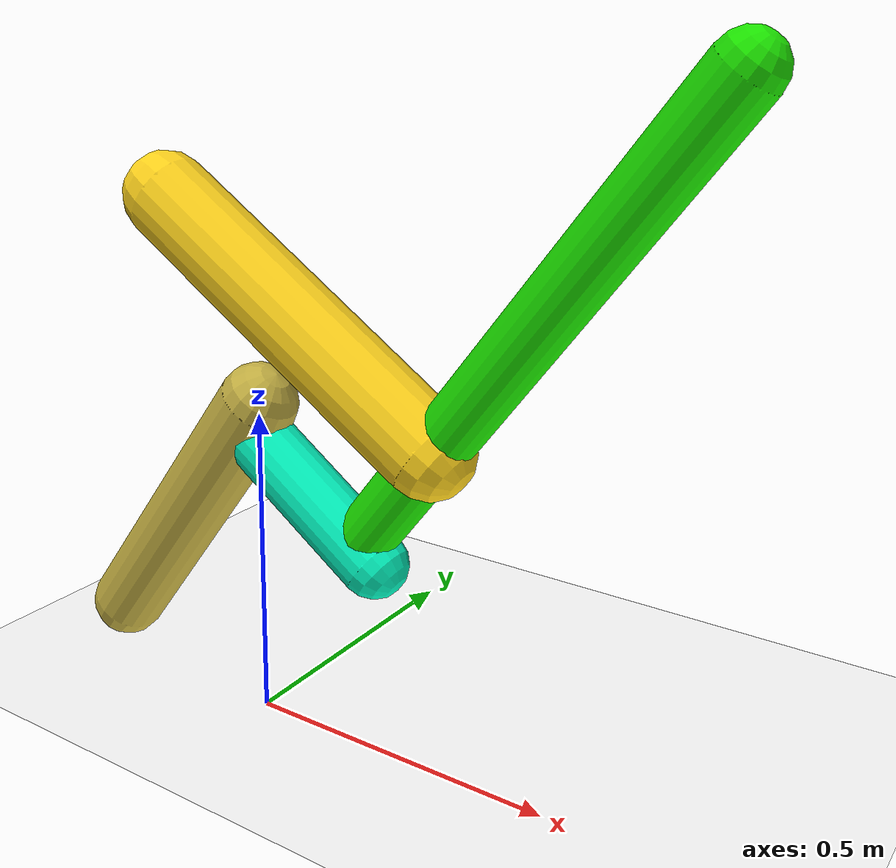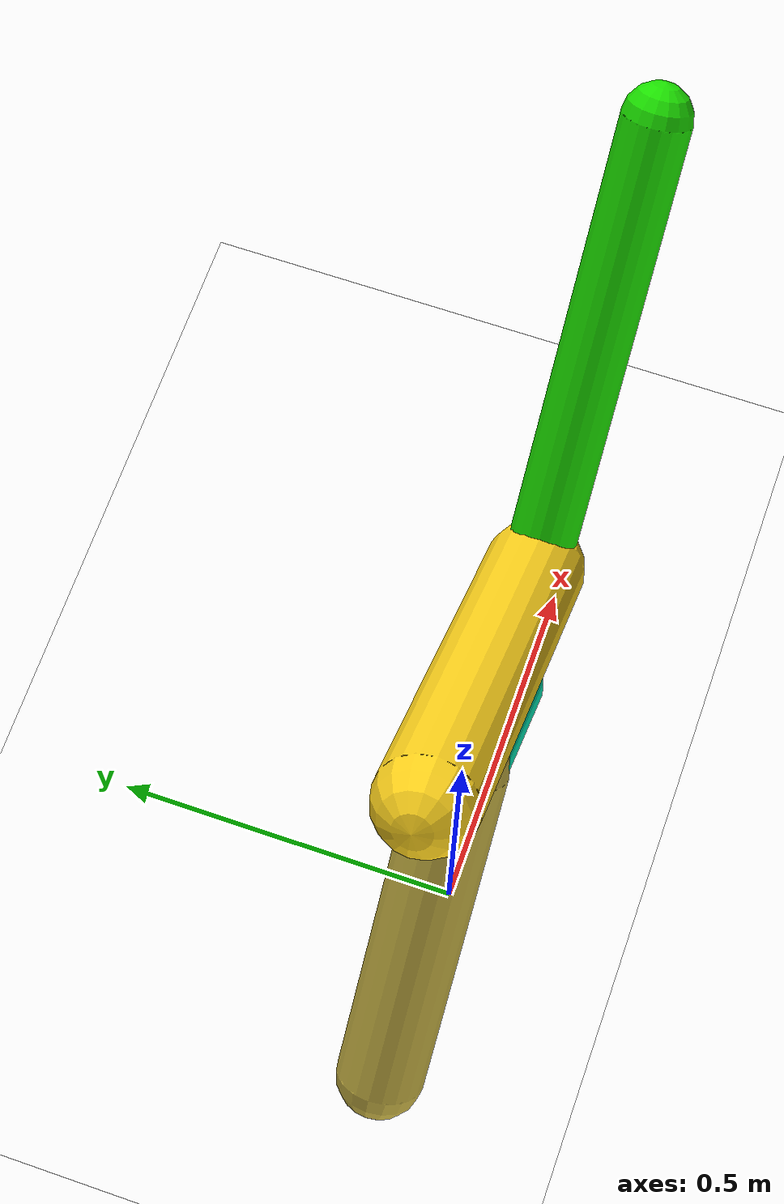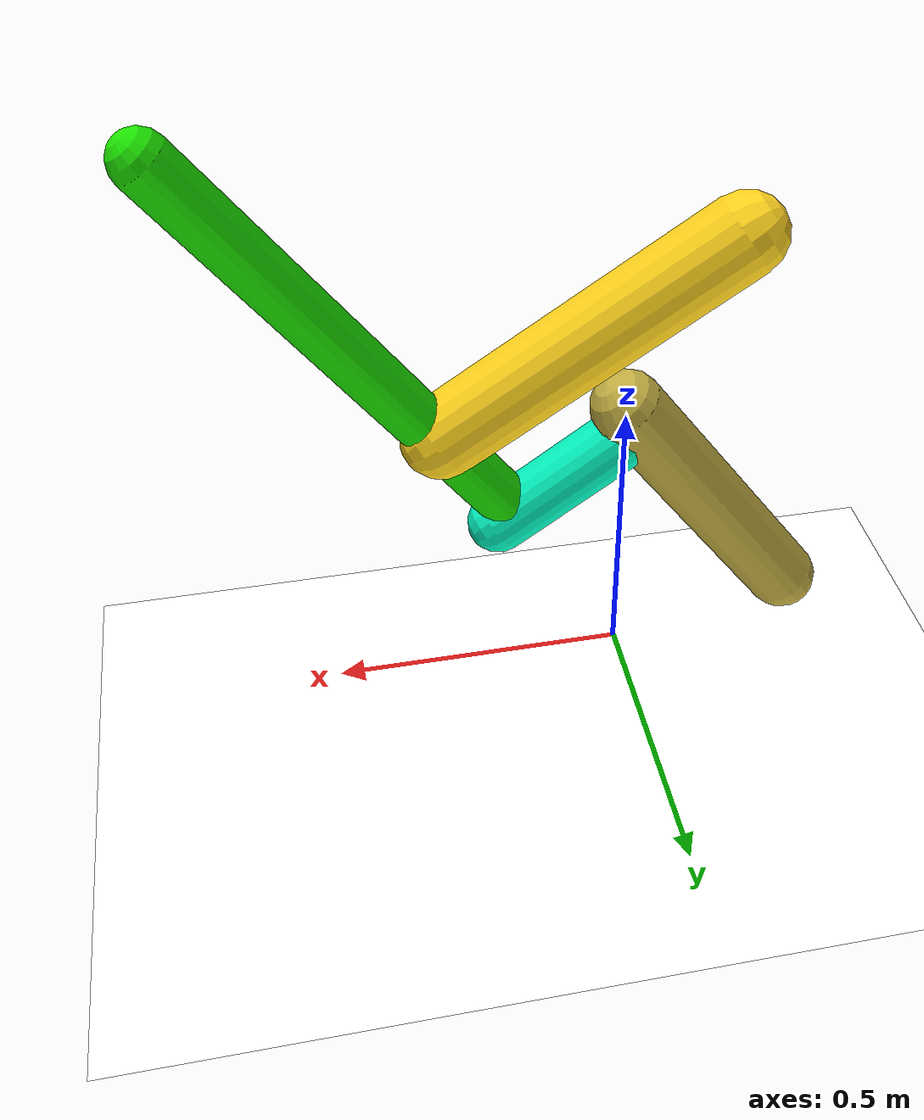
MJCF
<mujoco model="morphology">
  <option timestep="0.01"/>
  <default>
    <default class="/"/>
  </default>
  <asset>
    <texture name="texplane" type="2d" builtin="checker" rgb1="0.1 0.2 0.3" rgb2="0.2 0.3 0.4" width="300" height="300"/>
    <material name="MatPlane" class="/" texture="texplane" texrepeat="20 20" specular="1" shininess="1" reflectance="0.5"/>
  </asset>
  <worldbody>
    <light name="//unnamed_light_0" class="/" directional="true" pos="0 0 1.5" dir="0 0 -1.3" cutoff="1e+02" exponent="1" diffuse="1 1 1" specular="0.1 0.1 0.1"/>
    <geom name="ground" class="/" type="plane" size="15 15 0.5" material="MatPlane" rgba="1 1 1 1"/>
    <body name="body" pos="0 0 0.52">
      <geom name="geom0" class="/" type="capsule" contype="1" conaffinity="1" condim="3" size="0.061" rgba="0.77 0.69 0.26 1" friction="0.4 0.1 0.1" fromto="0 0 0 -0.31 0 -0.42"/>
      <body name="body1" pos="-0.028 0 -0.038">
        <geom name="geom1" class="/" type="capsule" contype="1" conaffinity="1" condim="3" size="0.052" rgba="0.0096 0.96 0.75 1" friction="0.4 0.1 0.1" fromto="0 0 0 0.24 0 -0.17"/>
        <body name="body2" pos="0.21 0 -0.15">
          <geom name="geom2" class="/" type="capsule" contype="1" conaffinity="1" condim="3" size="0.045" rgba="0.11 0.9 0.00055 1" friction="0.4 0.1 0.1" fromto="0 0 0 0.5 0 0.68"/>
          <body name="body3" pos="0.12 0 0.17">
            <geom name="geom3" class="/" type="capsule" contype="1" conaffinity="1" condim="3" size="0.067" rgba="1 0.83 0.11 1" friction="0.4 0.1 0.1" fromto="0 0 0 -0.47 0 0.31"/>
            <joint name="joint3" class="/" type="hinge" axis="0 1 0" limited="true" stiffness="20" range="-32 32" armature="0.1" damping="2"/>
          </body>
          <joint name="joint2" class="/" type="hinge" axis="0 1 0" limited="true" stiffness="20" range="-51 51" armature="0.1" damping="2"/>
        </body>
        <joint name="joint1" class="/" type="hinge" axis="0 1 0" limited="true" stiffness="20" range="-38 38" armature="0.1" damping="2"/>
      </body>
      <joint name="rootx" class="/" type="slide" axis="1 0 0" limited="false" stiffness="0" armature="0" damping="0"/>
      <joint name="rootz" class="/" type="slide" axis="0 0 1" limited="false" stiffness="0" armature="0" damping="0"/>
      <joint name="rooty" class="/" type="hinge" axis="0 1 0" limited="false" stiffness="0" armature="0" damping="0"/>
    </body>
  </worldbody>
  <actuator>
    <motor name="motor3" class="/" ctrllimited="true" ctrlrange="-1 1" gear="1e+02" joint="joint3"/>
    <motor name="motor2" class="/" ctrllimited="true" ctrlrange="-1 1" gear="1.9e+02" joint="joint2"/>
    <motor name="motor1" class="/" ctrllimited="true" ctrlrange="-1 1" gear="1.4e+02" joint="joint1"/>
  </actuator>
  <sensor>
    <subtreelinvel name="velocity" body="body"/>
  </sensor>
</mujoco>
